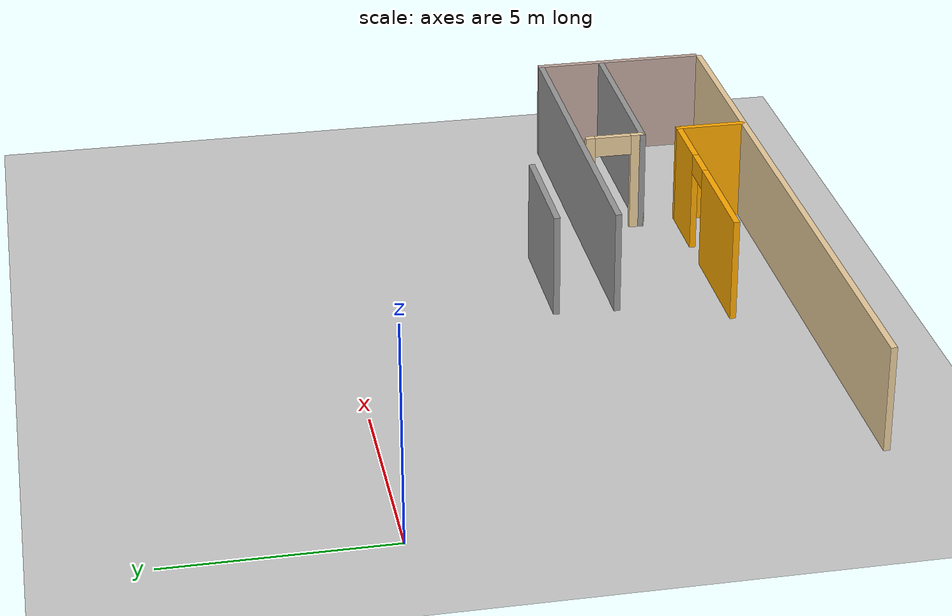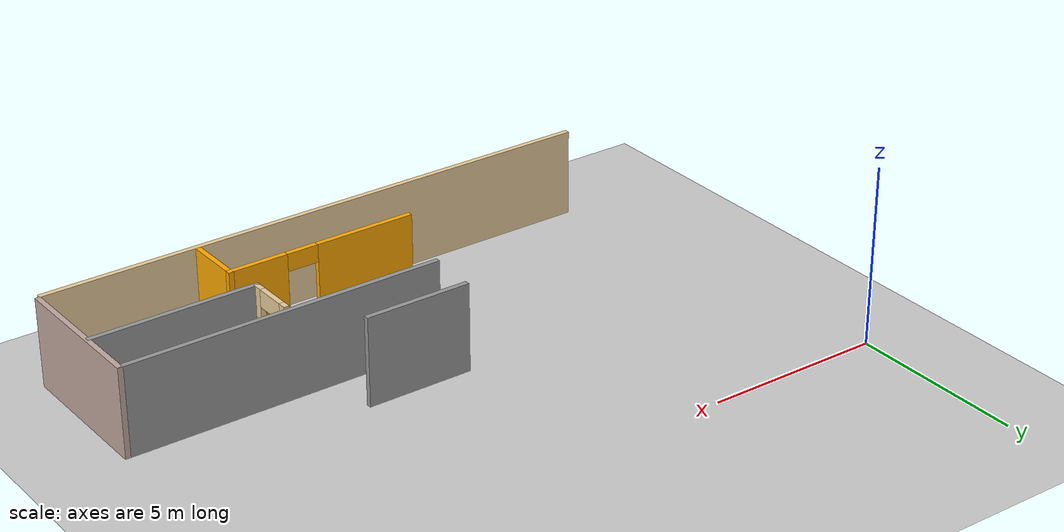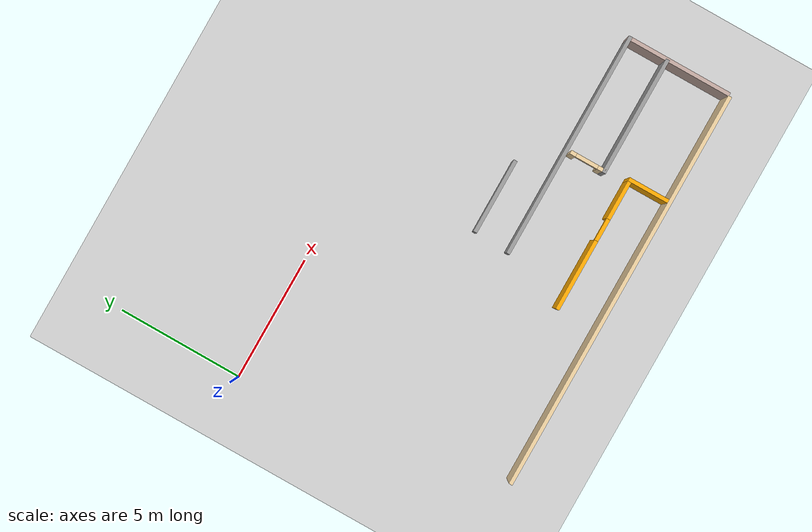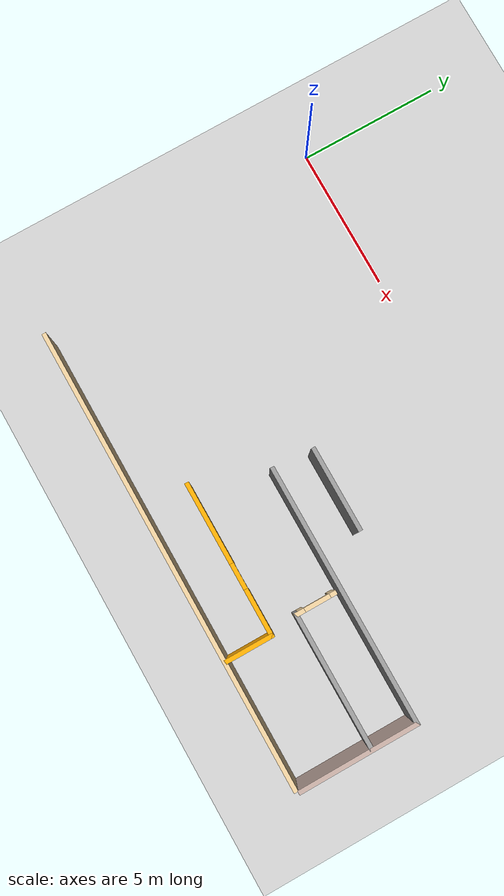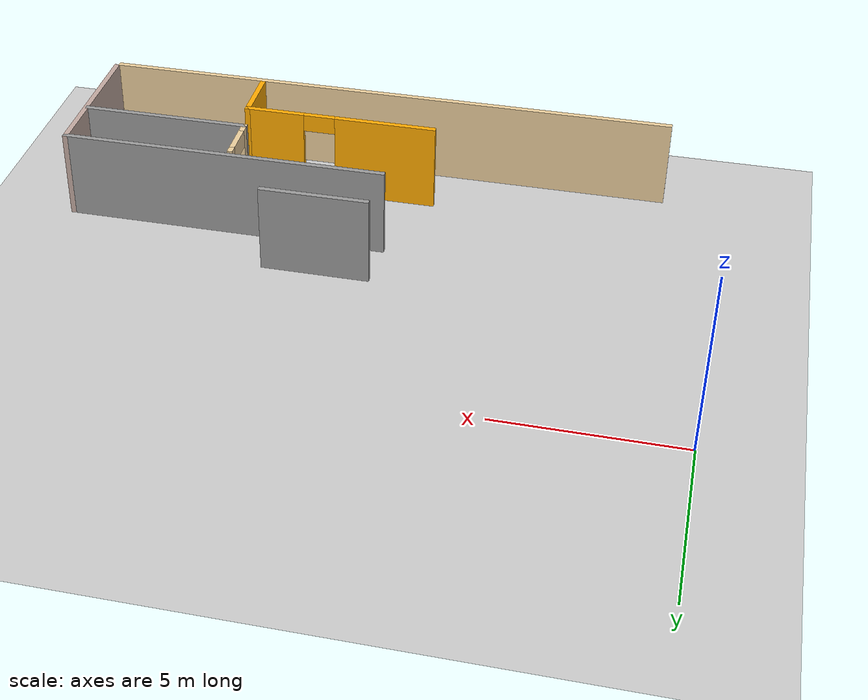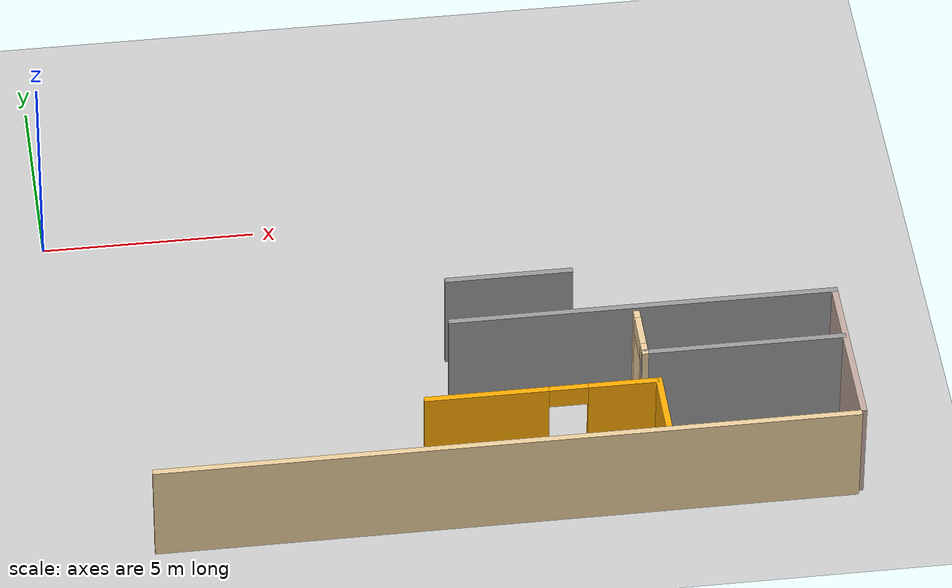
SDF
<sdf version="1.6">
 <world name="default">
  <model name="ground_plane">
   <static>1</static>
   <link name="link">
    <collision name="collision">
     <geometry><plane><normal>0 0 1</normal><size>100 100</size></plane></geometry>
     <surface><friction><ode><mu>100</mu><mu2>50</mu2></ode></friction></surface>
    </collision>
    <visual name="visual">
     <cast_shadows>0</cast_shadows>
     <geometry><plane><normal>0 0 1</normal><size>100 100</size></plane></geometry>
     <material>
      <script><uri>file://media/materials/scripts/gazebo.material</uri><name>Gazebo/Grey</name></script>
     </material>
    </visual>
   </link>
  </model>
  <model name="model">
   <link name="Wall_106">
    <pose>1.73212 -1.37227 0 0 -0 0</pose>
    <visual name="Wall_106_Visual">
     <pose>0 0 1.25 0 -0 0</pose>
     <geometry><box><size>3 0.15 2.5</size></box></geometry>
     <material>
      <script><uri>file://media/materials/scripts/gazebo.material</uri><name>Gazebo/Grey</name></script>
      <ambient>1 1 1 1</ambient>
      <shader type="pixel"/>
      <diffuse>0.7 0.7 0.7 1</diffuse>
      <specular>0.01 0.01 0.01 1</specular>
      <emissive>0 0 0 1</emissive>
     </material>
     <meta><layer>0</layer></meta>
    </visual>
    <collision name="Wall_106_Collision">
     <pose>0 0 1.25 0 -0 0</pose>
     <geometry><box><size>3 0.15 2.5</size></box></geometry>
     <surface>
      <friction>
       <ode><mu>1</mu><mu2>1</mu2><fdir1>0 0 0</fdir1><slip1>0</slip1><slip2>0</slip2></ode>
       <torsional>
        <coefficient>1</coefficient>
        <patch_radius>0</patch_radius>
        <surface_radius>0</surface_radius>
        <use_patch_radius>1</use_patch_radius>
        <ode><slip>0</slip></ode>
       </torsional>
      </friction>
      <bounce><restitution_coefficient>0</restitution_coefficient><threshold>1e+06</threshold></bounce>
      <contact>
       <collide_without_contact>0</collide_without_contact>
       <collide_without_contact_bitmask>1</collide_without_contact_bitmask>
       <collide_bitmask>1</collide_bitmask>
       <ode>
        <soft_cfm>0</soft_cfm>
        <soft_erp>0.2</soft_erp>
        <kp>1e+13</kp>
        <kd>1</kd>
        <max_vel>0.01</max_vel>
        <min_depth>0</min_depth>
       </ode>
       <bullet>
        <split_impulse>1</split_impulse>
        <split_impulse_penetration_threshold>-0.01</split_impulse_penetration_threshold>
        <soft_cfm>0</soft_cfm>
        <soft_erp>0.2</soft_erp>
        <kp>1e+13</kp>
        <kd>1</kd>
       </bullet>
      </contact>
     </surface>
    </collision>
   </link>
   <link name="Wall_31">
    <pose>4.68653 -2.80194 0 0 -0 3.14159</pose>
    <visual name="Wall_31_Visual">
     <pose>0 0 1.25 0 -0 0</pose>
     <geometry><box><size>9.1 0.15 2.5</size></box></geometry>
     <material>
      <script><uri>file://media/materials/scripts/gazebo.material</uri><name>Gazebo/Grey</name></script>
      <ambient>1 1 1 1</ambient>
      <shader type="pixel"/>
      <diffuse>0.7 0.7 0.7 1</diffuse>
      <specular>0.01 0.01 0.01 1</specular>
      <emissive>0 0 0 1</emissive>
     </material>
     <meta><layer>0</layer></meta>
    </visual>
    <collision name="Wall_31_Collision">
     <pose>0 0 1.25 0 -0 0</pose>
     <geometry><box><size>9.1 0.15 2.5</size></box></geometry>
     <surface>
      <friction>
       <ode><mu>1</mu><mu2>1</mu2><fdir1>0 0 0</fdir1><slip1>0</slip1><slip2>0</slip2></ode>
       <torsional>
        <coefficient>1</coefficient>
        <patch_radius>0</patch_radius>
        <surface_radius>0</surface_radius>
        <use_patch_radius>1</use_patch_radius>
        <ode><slip>0</slip></ode>
       </torsional>
      </friction>
      <bounce><restitution_coefficient>0</restitution_coefficient><threshold>1e+06</threshold></bounce>
      <contact>
       <collide_without_contact>0</collide_without_contact>
       <collide_without_contact_bitmask>1</collide_without_contact_bitmask>
       <collide_bitmask>1</collide_bitmask>
       <ode>
        <soft_cfm>0</soft_cfm>
        <soft_erp>0.2</soft_erp>
        <kp>1e+13</kp>
        <kd>1</kd>
        <max_vel>0.01</max_vel>
        <min_depth>0</min_depth>
       </ode>
       <bullet>
        <split_impulse>1</split_impulse>
        <split_impulse_penetration_threshold>-0.01</split_impulse_penetration_threshold>
        <soft_cfm>0</soft_cfm>
        <soft_erp>0.2</soft_erp>
        <kp>1e+13</kp>
        <kd>1</kd>
       </bullet>
      </contact>
     </surface>
    </collision>
   </link>
   <link name="Wall_33">
    <pose>6.79379 -4.39131 0 0 -0 3.14159</pose>
    <visual name="Wall_33_Visual">
     <pose>0 0 1.25 0 -0 0</pose>
     <geometry><box><size>4.75 0.15 2.5</size></box></geometry>
     <material>
      <script><uri>file://media/materials/scripts/gazebo.material</uri><name>Gazebo/Grey</name></script>
      <ambient>1 1 1 1</ambient>
      <shader type="pixel"/>
      <diffuse>0.7 0.7 0.7 1</diffuse>
      <specular>0.01 0.01 0.01 1</specular>
      <emissive>0 0 0 1</emissive>
     </material>
     <meta><layer>0</layer></meta>
    </visual>
    <collision name="Wall_33_Collision">
     <pose>0 0 1.25 0 -0 0</pose>
     <geometry><box><size>4.75 0.15 2.5</size></box></geometry>
     <surface>
      <friction>
       <ode><mu>1</mu><mu2>1</mu2><fdir1>0 0 0</fdir1><slip1>0</slip1><slip2>0</slip2></ode>
       <torsional>
        <coefficient>1</coefficient>
        <patch_radius>0</patch_radius>
        <surface_radius>0</surface_radius>
        <use_patch_radius>1</use_patch_radius>
        <ode><slip>0</slip></ode>
       </torsional>
      </friction>
      <bounce><restitution_coefficient>0</restitution_coefficient><threshold>1e+06</threshold></bounce>
      <contact>
       <collide_without_contact>0</collide_without_contact>
       <collide_without_contact_bitmask>1</collide_without_contact_bitmask>
       <collide_bitmask>1</collide_bitmask>
       <ode>
        <soft_cfm>0</soft_cfm>
        <soft_erp>0.2</soft_erp>
        <kp>1e+13</kp>
        <kd>1</kd>
        <max_vel>0.01</max_vel>
        <min_depth>0</min_depth>
       </ode>
       <bullet>
        <split_impulse>1</split_impulse>
        <split_impulse_penetration_threshold>-0.01</split_impulse_penetration_threshold>
        <soft_cfm>0</soft_cfm>
        <soft_erp>0.2</soft_erp>
        <kp>1e+13</kp>
        <kd>1</kd>
       </bullet>
      </contact>
     </surface>
    </collision>
   </link>
   <link name="Wall_7">
    <pose>0.988472 -7.025 0 0 -0 0</pose>
    <visual name="Wall_7_Visual">
     <pose>0 0 1.25 0 -0 0</pose>
     <geometry><box><size>16.25 0.15 2.5</size></box></geometry>
     <material>
      <script><uri>file://media/materials/scripts/gazebo.material</uri><name>Gazebo/Grey</name></script>
      <ambient>0.921569 0.807843 0.615686 1</ambient>
      <shader type="pixel"/>
      <diffuse>0.7 0.7 0.7 1</diffuse>
      <specular>0.01 0.01 0.01 1</specular>
      <emissive>0 0 0 1</emissive>
     </material>
     <meta><layer>0</layer></meta>
    </visual>
    <collision name="Wall_7_Collision">
     <pose>0 0 1.25 0 -0 0</pose>
     <geometry><box><size>16.25 0.15 2.5</size></box></geometry>
     <surface>
      <friction>
       <ode><mu>1</mu><mu2>1</mu2><fdir1>0 0 0</fdir1><slip1>0</slip1><slip2>0</slip2></ode>
       <torsional>
        <coefficient>1</coefficient>
        <patch_radius>0</patch_radius>
        <surface_radius>0</surface_radius>
        <use_patch_radius>1</use_patch_radius>
        <ode><slip>0</slip></ode>
       </torsional>
      </friction>
      <bounce><restitution_coefficient>0</restitution_coefficient><threshold>1e+06</threshold></bounce>
      <contact>
       <collide_without_contact>0</collide_without_contact>
       <collide_without_contact_bitmask>1</collide_without_contact_bitmask>
       <collide_bitmask>1</collide_bitmask>
       <ode>
        <soft_cfm>0</soft_cfm>
        <soft_erp>0.2</soft_erp>
        <kp>1e+13</kp>
        <kd>1</kd>
        <max_vel>0.01</max_vel>
        <min_depth>0</min_depth>
       </ode>
       <bullet>
        <split_impulse>1</split_impulse>
        <split_impulse_penetration_threshold>-0.01</split_impulse_penetration_threshold>
        <soft_cfm>0</soft_cfm>
        <soft_erp>0.2</soft_erp>
        <kp>1e+13</kp>
        <kd>1</kd>
       </bullet>
      </contact>
     </surface>
    </collision>
   </link>
   <link name="Wall_80">
    <pose>4.49379 -3.71631 0 0 -0 1.5708</pose>
    <visual name="Wall_80_Visual_0">
     <pose>-0.566249 0 1.25 0 -0 0</pose>
     <geometry><box><size>0.367502 0.15 2.5</size></box></geometry>
     <material>
      <script><uri>file://media/materials/scripts/gazebo.material</uri><name>Gazebo/Grey</name></script>
      <ambient>0.921569 0.807843 0.615686 1</ambient>
      <shader type="pixel"/>
      <diffuse>0.7 0.7 0.7 1</diffuse>
      <specular>0.01 0.01 0.01 1</specular>
      <emissive>0 0 0 1</emissive>
     </material>
     <meta><layer>0</layer></meta>
    </visual>
    <visual name="Wall_80_Visual_1">
     <pose>0.633751 0 1.25 0 -0 0</pose>
     <geometry><box><size>0.232498 0.15 2.5</size></box></geometry>
     <material>
      <script><uri>file://media/materials/scripts/gazebo.material</uri><name>Gazebo/Grey</name></script>
      <ambient>0.921569 0.807843 0.615686 1</ambient>
      <shader type="pixel"/>
      <diffuse>0.7 0.7 0.7 1</diffuse>
      <specular>0.01 0.01 0.01 1</specular>
      <emissive>0 0 0 1</emissive>
     </material>
     <meta><layer>0</layer></meta>
    </visual>
    <visual name="Wall_80_Visual_2">
     <pose>0.067502 0 2.25 0 -0 0</pose>
     <geometry><box><size>0.9 0.15 0.5</size></box></geometry>
     <material>
      <script><uri>file://media/materials/scripts/gazebo.material</uri><name>Gazebo/Grey</name></script>
      <ambient>0.921569 0.807843 0.615686 1</ambient>
      <shader type="pixel"/>
      <diffuse>0.7 0.7 0.7 1</diffuse>
      <specular>0.01 0.01 0.01 1</specular>
      <emissive>0 0 0 1</emissive>
     </material>
     <meta><layer>0</layer></meta>
    </visual>
    <collision name="Wall_80_Collision_2">
     <pose>0.067502 0 2.25 0 -0 0</pose>
     <geometry><box><size>0.9 0.15 0.5</size></box></geometry>
     <surface>
      <friction>
       <ode><mu>1</mu><mu2>1</mu2><fdir1>0 0 0</fdir1><slip1>0</slip1><slip2>0</slip2></ode>
       <torsional>
        <coefficient>1</coefficient>
        <patch_radius>0</patch_radius>
        <surface_radius>0</surface_radius>
        <use_patch_radius>1</use_patch_radius>
        <ode><slip>0</slip></ode>
       </torsional>
      </friction>
      <bounce><restitution_coefficient>0</restitution_coefficient><threshold>1e+06</threshold></bounce>
      <contact>
       <collide_without_contact>0</collide_without_contact>
       <collide_without_contact_bitmask>1</collide_without_contact_bitmask>
       <collide_bitmask>1</collide_bitmask>
       <ode>
        <soft_cfm>0</soft_cfm>
        <soft_erp>0.2</soft_erp>
        <kp>1e+13</kp>
        <kd>1</kd>
        <max_vel>0.01</max_vel>
        <min_depth>0</min_depth>
       </ode>
       <bullet>
        <split_impulse>1</split_impulse>
        <split_impulse_penetration_threshold>-0.01</split_impulse_penetration_threshold>
        <soft_cfm>0</soft_cfm>
        <soft_erp>0.2</soft_erp>
        <kp>1e+13</kp>
        <kd>1</kd>
       </bullet>
      </contact>
     </surface>
    </collision>
    <collision name="Wall_80_Collision_0">
     <pose>-0.566249 0 1.25 0 -0 0</pose>
     <geometry><box><size>0.367502 0.15 2.5</size></box></geometry>
     <surface>
      <friction>
       <ode><mu>1</mu><mu2>1</mu2><fdir1>0 0 0</fdir1><slip1>0</slip1><slip2>0</slip2></ode>
       <torsional>
        <coefficient>1</coefficient>
        <patch_radius>0</patch_radius>
        <surface_radius>0</surface_radius>
        <use_patch_radius>1</use_patch_radius>
        <ode><slip>0</slip></ode>
       </torsional>
      </friction>
      <bounce><restitution_coefficient>0</restitution_coefficient><threshold>1e+06</threshold></bounce>
      <contact>
       <collide_without_contact>0</collide_without_contact>
       <collide_without_contact_bitmask>1</collide_without_contact_bitmask>
       <collide_bitmask>1</collide_bitmask>
       <ode>
        <soft_cfm>0</soft_cfm>
        <soft_erp>0.2</soft_erp>
        <kp>1e+13</kp>
        <kd>1</kd>
        <max_vel>0.01</max_vel>
        <min_depth>0</min_depth>
       </ode>
       <bullet>
        <split_impulse>1</split_impulse>
        <split_impulse_penetration_threshold>-0.01</split_impulse_penetration_threshold>
        <soft_cfm>0</soft_cfm>
        <soft_erp>0.2</soft_erp>
        <kp>1e+13</kp>
        <kd>1</kd>
       </bullet>
      </contact>
     </surface>
    </collision>
    <collision name="Wall_80_Collision_1">
     <pose>0.633751 0 1.25 0 -0 0</pose>
     <geometry><box><size>0.232498 0.15 2.5</size></box></geometry>
     <surface>
      <friction>
       <ode><mu>1</mu><mu2>1</mu2><fdir1>0 0 0</fdir1><slip1>0</slip1><slip2>0</slip2></ode>
       <torsional>
        <coefficient>1</coefficient>
        <patch_radius>0</patch_radius>
        <surface_radius>0</surface_radius>
        <use_patch_radius>1</use_patch_radius>
        <ode><slip>0</slip></ode>
       </torsional>
      </friction>
      <bounce><restitution_coefficient>0</restitution_coefficient><threshold>1e+06</threshold></bounce>
      <contact>
       <collide_without_contact>0</collide_without_contact>
       <collide_without_contact_bitmask>1</collide_without_contact_bitmask>
       <collide_bitmask>1</collide_bitmask>
       <ode>
        <soft_cfm>0</soft_cfm>
        <soft_erp>0.2</soft_erp>
        <kp>1e+13</kp>
        <kd>1</kd>
        <max_vel>0.01</max_vel>
        <min_depth>0</min_depth>
       </ode>
       <bullet>
        <split_impulse>1</split_impulse>
        <split_impulse_penetration_threshold>-0.01</split_impulse_penetration_threshold>
        <soft_cfm>0</soft_cfm>
        <soft_erp>0.2</soft_erp>
        <kp>1e+13</kp>
        <kd>1</kd>
       </bullet>
      </contact>
     </surface>
    </collision>
   </link>
   <link name="Wall_89">
    <pose>9.16153 -4.85194 0 0 0 -1.5708</pose>
    <visual name="Wall_89_Visual">
     <pose>0 0 1.25 0 -0 0</pose>
     <geometry><box><size>4.25 0.15 2.5</size></box></geometry>
     <material>
      <script><uri>file://media/materials/scripts/gazebo.material</uri><name>Gazebo/Grey</name></script>
      <ambient>0.760784 0.662745 0.627451 1</ambient>
      <shader type="pixel"/>
      <diffuse>0.7 0.7 0.7 1</diffuse>
      <specular>0.01 0.01 0.01 1</specular>
      <emissive>0 0 0 1</emissive>
     </material>
     <meta><layer>0</layer></meta>
    </visual>
    <collision name="Wall_89_Collision">
     <pose>0 0 1.25 0 -0 0</pose>
     <geometry><box><size>4.25 0.15 2.5</size></box></geometry>
     <surface>
      <friction>
       <ode><mu>1</mu><mu2>1</mu2><fdir1>0 0 0</fdir1><slip1>0</slip1><slip2>0</slip2></ode>
       <torsional>
        <coefficient>1</coefficient>
        <patch_radius>0</patch_radius>
        <surface_radius>0</surface_radius>
        <use_patch_radius>1</use_patch_radius>
        <ode><slip>0</slip></ode>
       </torsional>
      </friction>
      <bounce><restitution_coefficient>0</restitution_coefficient><threshold>1e+06</threshold></bounce>
      <contact>
       <collide_without_contact>0</collide_without_contact>
       <collide_without_contact_bitmask>1</collide_without_contact_bitmask>
       <collide_bitmask>1</collide_bitmask>
       <ode>
        <soft_cfm>0</soft_cfm>
        <soft_erp>0.2</soft_erp>
        <kp>1e+13</kp>
        <kd>1</kd>
        <max_vel>0.01</max_vel>
        <min_depth>0</min_depth>
       </ode>
       <bullet>
        <split_impulse>1</split_impulse>
        <split_impulse_penetration_threshold>-0.01</split_impulse_penetration_threshold>
        <soft_cfm>0</soft_cfm>
        <soft_erp>0.2</soft_erp>
        <kp>1e+13</kp>
        <kd>1</kd>
       </bullet>
      </contact>
     </surface>
    </collision>
   </link>
   <link name="Wall_91">
    <pose>4.6756 -6.17131 0 0 -0 1.5708</pose>
    <visual name="Wall_91_Visual">
     <pose>0 0 1.25 0 -0 0</pose>
     <geometry><box><size>1.75 0.15 2.5</size></box></geometry>
     <material>
      <script><uri>file://media/materials/scripts/gazebo.material</uri><name>Gazebo/Grey</name></script>
      <ambient>1 0.666667 0 1</ambient>
      <shader type="pixel"/>
      <diffuse>0.7 0.7 0.7 1</diffuse>
      <specular>0.01 0.01 0.01 1</specular>
      <emissive>0 0 0 1</emissive>
     </material>
     <meta><layer>0</layer></meta>
    </visual>
    <collision name="Wall_91_Collision">
     <pose>0 0 1.25 0 -0 0</pose>
     <geometry><box><size>1.75 0.15 2.5</size></box></geometry>
     <surface>
      <friction>
       <ode><mu>1</mu><mu2>1</mu2><fdir1>0 0 0</fdir1><slip1>0</slip1><slip2>0</slip2></ode>
       <torsional>
        <coefficient>1</coefficient>
        <patch_radius>0</patch_radius>
        <surface_radius>0</surface_radius>
        <use_patch_radius>1</use_patch_radius>
        <ode><slip>0</slip></ode>
       </torsional>
      </friction>
      <bounce><restitution_coefficient>0</restitution_coefficient><threshold>1e+06</threshold></bounce>
      <contact>
       <collide_without_contact>0</collide_without_contact>
       <collide_without_contact_bitmask>1</collide_without_contact_bitmask>
       <collide_bitmask>1</collide_bitmask>
       <ode>
        <soft_cfm>0</soft_cfm>
        <soft_erp>0.2</soft_erp>
        <kp>1e+13</kp>
        <kd>1</kd>
        <max_vel>0.01</max_vel>
        <min_depth>0</min_depth>
       </ode>
       <bullet>
        <split_impulse>1</split_impulse>
        <split_impulse_penetration_threshold>-0.01</split_impulse_penetration_threshold>
        <soft_cfm>0</soft_cfm>
        <soft_erp>0.2</soft_erp>
        <kp>1e+13</kp>
        <kd>1</kd>
       </bullet>
      </contact>
     </surface>
    </collision>
   </link>
   <link name="Wall_92">
    <pose>2.0006 -5.37131 0 0 -0 3.14159</pose>
    <visual name="Wall_92_Visual_0">
     <pose>-1.89153 0 1.25 0 -0 0</pose>
     <geometry><box><size>1.71695 0.15 2.5</size></box></geometry>
     <material>
      <script><uri>file://media/materials/scripts/gazebo.material</uri><name>Gazebo/Grey</name></script>
      <ambient>1 0.666667 0 1</ambient>
      <shader type="pixel"/>
      <diffuse>0.7 0.7 0.7 1</diffuse>
      <specular>0.01 0.01 0.01 1</specular>
      <emissive>0 0 0 1</emissive>
     </material>
     <meta><layer>0</layer></meta>
    </visual>
    <visual name="Wall_92_Visual_1">
     <pose>1.30847 0 1.25 0 -0 0</pose>
     <geometry><box><size>2.88305 0.15 2.5</size></box></geometry>
     <material>
      <script><uri>file://media/materials/scripts/gazebo.material</uri><name>Gazebo/Grey</name></script>
      <ambient>1 0.666667 0 1</ambient>
      <shader type="pixel"/>
      <diffuse>0.7 0.7 0.7 1</diffuse>
      <specular>0.01 0.01 0.01 1</specular>
      <emissive>0 0 0 1</emissive>
     </material>
     <meta><layer>0</layer></meta>
    </visual>
    <visual name="Wall_92_Visual_2">
     <pose>-0.583052 0 2.25 0 -0 0</pose>
     <geometry><box><size>0.9 0.15 0.5</size></box></geometry>
     <material>
      <script><uri>file://media/materials/scripts/gazebo.material</uri><name>Gazebo/Grey</name></script>
      <ambient>1 0.666667 0 1</ambient>
      <shader type="pixel"/>
      <diffuse>0.7 0.7 0.7 1</diffuse>
      <specular>0.01 0.01 0.01 1</specular>
      <emissive>0 0 0 1</emissive>
     </material>
     <meta><layer>0</layer></meta>
    </visual>
    <collision name="Wall_92_Collision_0">
     <pose>-1.89153 0 1.25 0 -0 0</pose>
     <geometry><box><size>1.71695 0.15 2.5</size></box></geometry>
     <surface>
      <friction>
       <ode><mu>1</mu><mu2>1</mu2><fdir1>0 0 0</fdir1><slip1>0</slip1><slip2>0</slip2></ode>
       <torsional>
        <coefficient>1</coefficient>
        <patch_radius>0</patch_radius>
        <surface_radius>0</surface_radius>
        <use_patch_radius>1</use_patch_radius>
        <ode><slip>0</slip></ode>
       </torsional>
      </friction>
      <bounce><restitution_coefficient>0</restitution_coefficient><threshold>1e+06</threshold></bounce>
      <contact>
       <collide_without_contact>0</collide_without_contact>
       <collide_without_contact_bitmask>1</collide_without_contact_bitmask>
       <collide_bitmask>1</collide_bitmask>
       <ode>
        <soft_cfm>0</soft_cfm>
        <soft_erp>0.2</soft_erp>
        <kp>1e+13</kp>
        <kd>1</kd>
        <max_vel>0.01</max_vel>
        <min_depth>0</min_depth>
       </ode>
       <bullet>
        <split_impulse>1</split_impulse>
        <split_impulse_penetration_threshold>-0.01</split_impulse_penetration_threshold>
        <soft_cfm>0</soft_cfm>
        <soft_erp>0.2</soft_erp>
        <kp>1e+13</kp>
        <kd>1</kd>
       </bullet>
      </contact>
     </surface>
    </collision>
    <collision name="Wall_92_Collision_1">
     <pose>1.30847 0 1.25 0 -0 0</pose>
     <geometry><box><size>2.88305 0.15 2.5</size></box></geometry>
     <surface>
      <friction>
       <ode><mu>1</mu><mu2>1</mu2><fdir1>0 0 0</fdir1><slip1>0</slip1><slip2>0</slip2></ode>
       <torsional>
        <coefficient>1</coefficient>
        <patch_radius>0</patch_radius>
        <surface_radius>0</surface_radius>
        <use_patch_radius>1</use_patch_radius>
        <ode><slip>0</slip></ode>
       </torsional>
      </friction>
      <bounce><restitution_coefficient>0</restitution_coefficient><threshold>1e+06</threshold></bounce>
      <contact>
       <collide_without_contact>0</collide_without_contact>
       <collide_without_contact_bitmask>1</collide_without_contact_bitmask>
       <collide_bitmask>1</collide_bitmask>
       <ode>
        <soft_cfm>0</soft_cfm>
        <soft_erp>0.2</soft_erp>
        <kp>1e+13</kp>
        <kd>1</kd>
        <max_vel>0.01</max_vel>
        <min_depth>0</min_depth>
       </ode>
       <bullet>
        <split_impulse>1</split_impulse>
        <split_impulse_penetration_threshold>-0.01</split_impulse_penetration_threshold>
        <soft_cfm>0</soft_cfm>
        <soft_erp>0.2</soft_erp>
        <kp>1e+13</kp>
        <kd>1</kd>
       </bullet>
      </contact>
     </surface>
    </collision>
    <collision name="Wall_92_Collision_2">
     <pose>-0.583052 0 2.25 0 -0 0</pose>
     <geometry><box><size>0.9 0.15 0.5</size></box></geometry>
     <surface>
      <friction>
       <ode><mu>1</mu><mu2>1</mu2><fdir1>0 0 0</fdir1><slip1>0</slip1><slip2>0</slip2></ode>
       <torsional>
        <coefficient>1</coefficient>
        <patch_radius>0</patch_radius>
        <surface_radius>0</surface_radius>
        <use_patch_radius>1</use_patch_radius>
        <ode><slip>0</slip></ode>
       </torsional>
      </friction>
      <bounce><restitution_coefficient>0</restitution_coefficient><threshold>1e+06</threshold></bounce>
      <contact>
       <collide_without_contact>0</collide_without_contact>
       <collide_without_contact_bitmask>1</collide_without_contact_bitmask>
       <collide_bitmask>1</collide_bitmask>
       <ode>
        <soft_cfm>0</soft_cfm>
        <soft_erp>0.2</soft_erp>
        <kp>1e+13</kp>
        <kd>1</kd>
        <max_vel>0.01</max_vel>
        <min_depth>0</min_depth>
       </ode>
       <bullet>
        <split_impulse>1</split_impulse>
        <split_impulse_penetration_threshold>-0.01</split_impulse_penetration_threshold>
        <soft_cfm>0</soft_cfm>
        <soft_erp>0.2</soft_erp>
        <kp>1e+13</kp>
        <kd>1</kd>
       </bullet>
      </contact>
     </surface>
    </collision>
   </link>
   <static>1</static>
   <pose>8.76473 -3.61191 0 0 -0 0</pose>
  </model>
 </world>
</sdf>
